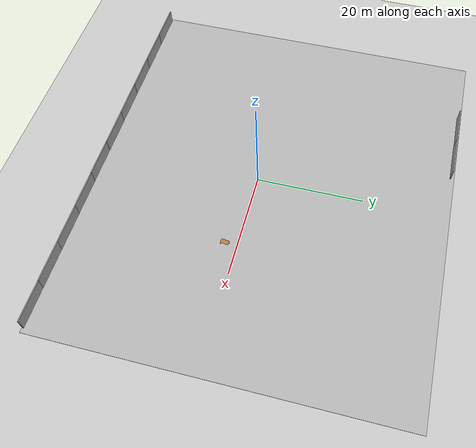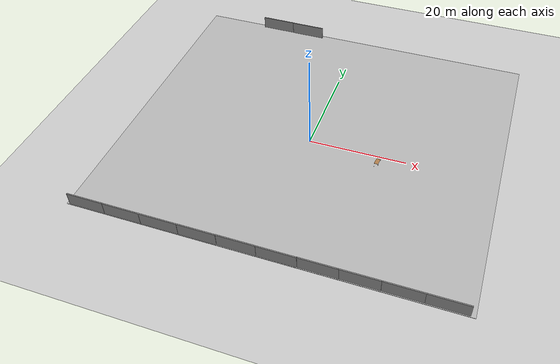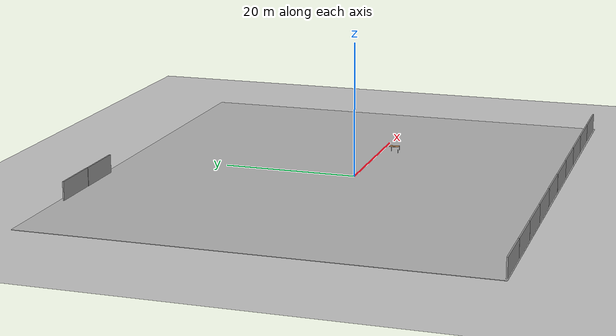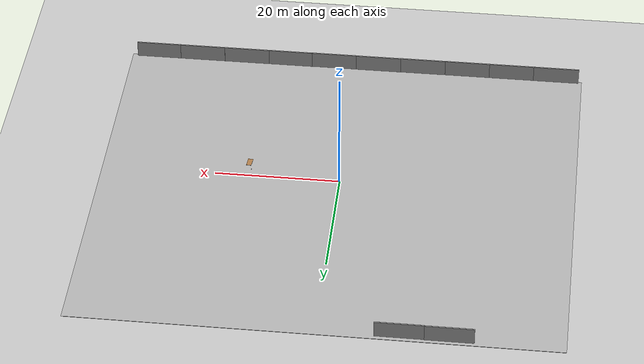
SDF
<sdf version="1.6">
 <world name="default">
  <light name="sun" type="directional">
   <pose>0 0 10 0 -0 0</pose>
   <diffuse>0.8 0.8 0.8 1</diffuse>
   <specular>0.2 0.2 0.2 1</specular>
   <attenuation>
    <range>1000</range>
    <constant>0.9</constant>
    <linear>0.01</linear>
    <quadratic>0.001</quadratic>
   </attenuation>
   <direction>-0.5 0.1 -0.9</direction>
  </light>
  <model name="ground_plane">
   <static>1</static>
   <link name="link">
    <collision name="collision">
     <geometry><plane><normal>0 0 1</normal><size>100 100</size></plane></geometry>
     <surface><friction><ode><mu>100</mu><mu2>50</mu2></ode></friction></surface>
    </collision>
    <visual name="visual">
     <cast_shadows>0</cast_shadows>
     <geometry><plane><normal>0 0 1</normal><size>100 100</size></plane></geometry>
     <material>
      <script><uri>file://media/materials/scripts/gazebo.material</uri><name>Gazebo/Grey</name></script>
     </material>
    </visual>
   </link>
  </model>
  <gravity>0 0 -9.8</gravity>
  <magnetic_field>6e-06 2.3e-05 -4.2e-05</magnetic_field>
  <atmosphere type="adiabatic"/>
  <physics name="default_physics" default="0" type="ode">
   <max_step_size>0.001</max_step_size>
   <real_time_factor>1</real_time_factor>
   <real_time_update_rate>1000</real_time_update_rate>
  </physics>
  <scene><ambient>0.4 0.4 0.4 1</ambient><background>0.7 0.7 0.7 1</background><shadows>1</shadows></scene>
  <spherical_coordinates>
   <surface_model>EARTH_WGS84</surface_model>
   <latitude_deg>0</latitude_deg>
   <longitude_deg>0</longitude_deg>
   <elevation>0</elevation>
   <heading_deg>0</heading_deg>
  </spherical_coordinates>
  <model name="tracks_textures">
   <static>1</static>
   <link name="tracks">
    <pose>-1.54 -2 0.025 0 -0 0</pose>
    <collision name="collision">
     <geometry><plane><normal>0 0 1</normal><size>5.076 5.893</size></plane></geometry>
     <surface><friction><ode><mu>100</mu><mu2>50</mu2></ode></friction></surface>
    </collision>
    <visual name="visual">
     <cast_shadows>0</cast_shadows>
     <geometry><plane><normal>0 0 1</normal><size>75.76 65.93</size></plane></geometry>
     <material>
      <script>
       <uri>model://tracks_textures/materials/scripts</uri>
       <uri>model://tracks_textures/materials/textures</uri>
       <name>tracks_textures/track_image</name>
      </script>
     </material>
    </visual>
   </link>
   <pose>1.94906 4.89719 0 0 -0 0</pose>
  </model>
  <model name="grey_wall">
   <static>1</static>
   <link name="link">
    <pose>0 0 1.4 0 -0 0</pose>
    <collision name="collision"><geometry><box><size>7.5 0.2 2.8</size></box></geometry></collision>
    <visual name="visual">
     <cast_shadows>0</cast_shadows>
     <geometry><box><size>7.5 0.2 2.8</size></box></geometry>
     <material>
      <script>
       <uri>model://grey_wall/materials/scripts</uri>
       <uri>model://grey_wall/materials/textures</uri>
       <name>vrc/grey_wall</name>
      </script>
     </material>
    </visual>
   </link>
   <pose>-20.0357 35.2103 0 0 -0 0</pose>
  </model>
  <model name="grey_wall_clone">
   <static>1</static>
   <link name="link">
    <pose>0 0 1.4 0 -0 0</pose>
    <collision name="collision"><geometry><box><size>7.5 0.2 2.8</size></box></geometry></collision>
    <visual name="visual">
     <cast_shadows>0</cast_shadows>
     <geometry><box><size>7.5 0.2 2.8</size></box></geometry>
     <material>
      <script>
       <uri>model://grey_wall/materials/scripts</uri>
       <uri>model://grey_wall/materials/textures</uri>
       <name>vrc/grey_wall</name>
      </script>
     </material>
    </visual>
   </link>
   <pose>-12.5494 35.1605 0 0 -0 0</pose>
  </model>
  <model name="grey_wall_clone_0">
   <static>1</static>
   <link name="link">
    <pose>0 0 1.4 0 -0 0</pose>
    <collision name="collision"><geometry><box><size>7.5 0.2 2.8</size></box></geometry></collision>
    <visual name="visual">
     <cast_shadows>0</cast_shadows>
     <geometry><box><size>7.5 0.2 2.8</size></box></geometry>
     <material>
      <script>
       <uri>model://grey_wall/materials/scripts</uri>
       <uri>model://grey_wall/materials/textures</uri>
       <name>vrc/grey_wall</name>
      </script>
     </material>
    </visual>
   </link>
   <pose>4.09614 -29.8295 0 0 -0 0</pose>
  </model>
  <model name="grey_wall_clone_1">
   <static>1</static>
   <link name="link">
    <pose>0 0 1.4 0 -0 0</pose>
    <collision name="collision"><geometry><box><size>7.5 0.2 2.8</size></box></geometry></collision>
    <visual name="visual">
     <cast_shadows>0</cast_shadows>
     <geometry><box><size>7.5 0.2 2.8</size></box></geometry>
     <material>
      <script>
       <uri>model://grey_wall/materials/scripts</uri>
       <uri>model://grey_wall/materials/textures</uri>
       <name>vrc/grey_wall</name>
      </script>
     </material>
    </visual>
   </link>
   <pose>11.5249 -29.7982 0 0 -0 0</pose>
  </model>
  <model name="grey_wall_clone_2">
   <static>1</static>
   <link name="link">
    <pose>0 0 1.4 0 -0 0</pose>
    <collision name="collision"><geometry><box><size>7.5 0.2 2.8</size></box></geometry></collision>
    <visual name="visual">
     <cast_shadows>0</cast_shadows>
     <geometry><box><size>7.5 0.2 2.8</size></box></geometry>
     <material>
      <script>
       <uri>model://grey_wall/materials/scripts</uri>
       <uri>model://grey_wall/materials/textures</uri>
       <name>vrc/grey_wall</name>
      </script>
     </material>
    </visual>
   </link>
   <pose>18.826 -29.7861 0 0 -0 0</pose>
  </model>
  <model name="grey_wall_clone_3">
   <static>1</static>
   <link name="link">
    <pose>0 0 1.4 0 -0 0</pose>
    <collision name="collision"><geometry><box><size>7.5 0.2 2.8</size></box></geometry></collision>
    <visual name="visual">
     <cast_shadows>0</cast_shadows>
     <geometry><box><size>7.5 0.2 2.8</size></box></geometry>
     <material>
      <script>
       <uri>model://grey_wall/materials/scripts</uri>
       <uri>model://grey_wall/materials/textures</uri>
       <name>vrc/grey_wall</name>
      </script>
     </material>
    </visual>
   </link>
   <pose>26.3365 -29.7813 0 0 -0 0</pose>
  </model>
  <model name="grey_wall_clone_4">
   <static>1</static>
   <link name="link">
    <pose>0 0 1.4 0 -0 0</pose>
    <collision name="collision"><geometry><box><size>7.5 0.2 2.8</size></box></geometry></collision>
    <visual name="visual">
     <cast_shadows>0</cast_shadows>
     <geometry><box><size>7.5 0.2 2.8</size></box></geometry>
     <material>
      <script>
       <uri>model://grey_wall/materials/scripts</uri>
       <uri>model://grey_wall/materials/textures</uri>
       <name>vrc/grey_wall</name>
      </script>
     </material>
    </visual>
   </link>
   <pose>33.6812 -29.7841 0 0 -0 0</pose>
  </model>
  <model name="grey_wall_clone_5">
   <static>1</static>
   <link name="link">
    <pose>0 0 1.4 0 -0 0</pose>
    <collision name="collision"><geometry><box><size>7.5 0.2 2.8</size></box></geometry></collision>
    <visual name="visual">
     <cast_shadows>0</cast_shadows>
     <geometry><box><size>7.5 0.2 2.8</size></box></geometry>
     <material>
      <script>
       <uri>model://grey_wall/materials/scripts</uri>
       <uri>model://grey_wall/materials/textures</uri>
       <name>vrc/grey_wall</name>
      </script>
     </material>
    </visual>
   </link>
   <pose>-3.38746 -29.8144 0 0 -0 0</pose>
  </model>
  <model name="grey_wall_clone_6">
   <static>1</static>
   <link name="link">
    <pose>0 0 1.4 0 -0 0</pose>
    <collision name="collision"><geometry><box><size>7.5 0.2 2.8</size></box></geometry></collision>
    <visual name="visual">
     <cast_shadows>0</cast_shadows>
     <geometry><box><size>7.5 0.2 2.8</size></box></geometry>
     <material>
      <script>
       <uri>model://grey_wall/materials/scripts</uri>
       <uri>model://grey_wall/materials/textures</uri>
       <name>vrc/grey_wall</name>
      </script>
     </material>
    </visual>
   </link>
   <pose>-10.8589 -29.845 0 0 -0 0</pose>
  </model>
  <model name="grey_wall_clone_7">
   <static>1</static>
   <link name="link">
    <pose>0 0 1.4 0 -0 0</pose>
    <collision name="collision"><geometry><box><size>7.5 0.2 2.8</size></box></geometry></collision>
    <visual name="visual">
     <cast_shadows>0</cast_shadows>
     <geometry><box><size>7.5 0.2 2.8</size></box></geometry>
     <material>
      <script>
       <uri>model://grey_wall/materials/scripts</uri>
       <uri>model://grey_wall/materials/textures</uri>
       <name>vrc/grey_wall</name>
      </script>
     </material>
    </visual>
   </link>
   <pose>-18.3388 -29.8601 0 0 -0 0</pose>
  </model>
  <model name="grey_wall_clone_8">
   <static>1</static>
   <link name="link">
    <pose>0 0 1.4 0 -0 0</pose>
    <collision name="collision"><geometry><box><size>7.5 0.2 2.8</size></box></geometry></collision>
    <visual name="visual">
     <cast_shadows>0</cast_shadows>
     <geometry><box><size>7.5 0.2 2.8</size></box></geometry>
     <material>
      <script>
       <uri>model://grey_wall/materials/scripts</uri>
       <uri>model://grey_wall/materials/textures</uri>
       <name>vrc/grey_wall</name>
      </script>
     </material>
    </visual>
   </link>
   <pose>-25.764 -29.8535 0 0 -0 0</pose>
  </model>
  <model name="grey_wall_clone_9">
   <static>1</static>
   <link name="link">
    <pose>0 0 1.4 0 -0 0</pose>
    <collision name="collision"><geometry><box><size>7.5 0.2 2.8</size></box></geometry></collision>
    <visual name="visual">
     <cast_shadows>0</cast_shadows>
     <geometry><box><size>7.5 0.2 2.8</size></box></geometry>
     <material>
      <script>
       <uri>model://grey_wall/materials/scripts</uri>
       <uri>model://grey_wall/materials/textures</uri>
       <name>vrc/grey_wall</name>
      </script>
     </material>
    </visual>
   </link>
   <pose>-33.1613 -29.8415 0 0 -0 0</pose>
  </model>
  <model name="table">
   <static>1</static>
   <link name="link">
    <collision name="surface">
     <pose>0 0 1 0 -0 0</pose>
     <geometry><box><size>1.5 0.8 0.03</size></box></geometry>
     <surface><friction><ode><mu>0.6</mu><mu2>0.6</mu2></ode></friction></surface>
    </collision>
    <visual name="visual1">
     <pose>0 0 1 0 -0 0</pose>
     <geometry><box><size>1.5 0.8 0.03</size></box></geometry>
     <material>
      <script><uri>file://media/materials/scripts/gazebo.material</uri><name>Gazebo/Wood</name></script>
     </material>
    </visual>
    <collision name="front_left_leg">
     <pose>0.68 0.38 0.5 0 -0 0</pose>
     <geometry><cylinder><radius>0.02</radius><length>1</length></cylinder></geometry>
    </collision>
    <visual name="front_left_leg">
     <pose>0.68 0.38 0.5 0 -0 0</pose>
     <geometry><cylinder><radius>0.02</radius><length>1</length></cylinder></geometry>
     <material>
      <script><uri>file://media/materials/scripts/gazebo.material</uri><name>Gazebo/Grey</name></script>
     </material>
    </visual>
    <collision name="front_right_leg">
     <pose>0.68 -0.38 0.5 0 -0 0</pose>
     <geometry><cylinder><radius>0.02</radius><length>1</length></cylinder></geometry>
    </collision>
    <visual name="front_right_leg">
     <pose>0.68 -0.38 0.5 0 -0 0</pose>
     <geometry><cylinder><radius>0.02</radius><length>1</length></cylinder></geometry>
     <material>
      <script><uri>file://media/materials/scripts/gazebo.material</uri><name>Gazebo/Grey</name></script>
     </material>
    </visual>
    <collision name="back_right_leg">
     <pose>-0.68 -0.38 0.5 0 -0 0</pose>
     <geometry><cylinder><radius>0.02</radius><length>1</length></cylinder></geometry>
    </collision>
    <visual name="back_right_leg">
     <pose>-0.68 -0.38 0.5 0 -0 0</pose>
     <geometry><cylinder><radius>0.02</radius><length>1</length></cylinder></geometry>
     <material>
      <script><uri>file://media/materials/scripts/gazebo.material</uri><name>Gazebo/Grey</name></script>
     </material>
    </visual>
    <collision name="back_left_leg">
     <pose>-0.68 0.38 0.5 0 -0 0</pose>
     <geometry><cylinder><radius>0.02</radius><length>1</length></cylinder></geometry>
    </collision>
    <visual name="back_left_leg">
     <pose>-0.68 0.38 0.5 0 -0 0</pose>
     <geometry><cylinder><radius>0.02</radius><length>1</length></cylinder></geometry>
     <material>
      <script><uri>file://media/materials/scripts/gazebo.material</uri><name>Gazebo/Grey</name></script>
     </material>
    </visual>
   </link>
   <pose>14.7 -2.2 0 0.004653 0.033586 1.47</pose>
  </model>
 </world>
</sdf>
